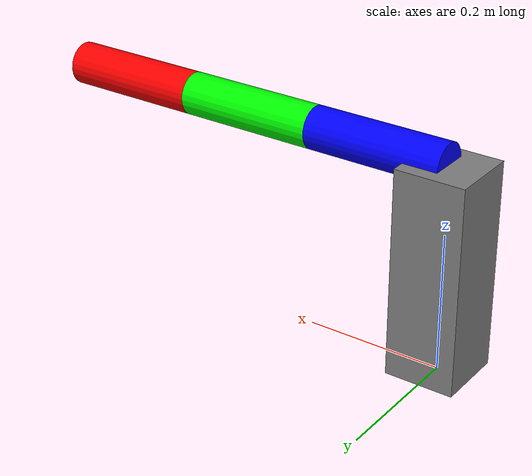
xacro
<?xml version="1.0"?>
<robot xmlns:xacro="http://wiki.ros.org/xacro">
  <!-- 1. 常量定义（方便后续修改尺寸） -->
  <xacro:property name="base_length" value="0.1" />    <!-- 底座尺寸 -->
  <xacro:property name="base_height" value="0.3" />    <!-- 底座尺寸 -->
  <xacro:property name="link_length" value="0.2" />    <!-- 关节连杆长度 -->
  <xacro:property name="link_radius" value="0.03" />   <!-- 关节连杆半径 -->
  <xacro:property name="gripper_length" value="0.1" /> <!-- 夹爪长度 -->
  <xacro:property name="gripper_radius" value="0.02" /><!-- 夹爪半径 -->
  <xacro:property name="joint_limit" value="${pi/2}" />   <!-- 关节角度限制（±90°） -->
  <xacro:property name="gripper_limit" value="0.6" />  <!-- 夹爪开合角度限制（0~0.6rad≈34°） -->

  <!-- 2. 机械结构定义（底座+3关节+夹爪，含视觉/碰撞/惯性） -->
  <link name="map">
    <origin xyz="0 0 0" rpy="0 0 0" />
  </link>

  <joint name="map_joint" type="fixed">
    <parent link="map" />
    <child link="base_link" />
    <origin xyz="0 0 0" rpy="0 0 0" />
  </joint>
  <!-- 2.1 底座连杆（base_link） -->
  <link name="base_link">
    <!-- 视觉模型（灰色立方体） -->
    <visual>
      <origin xyz="0 0 ${base_height/2}" rpy="0 0 0" />
      <geometry>
        <box size="${base_length} ${base_length} ${base_height}" />
      </geometry>
      <material name="gray">
        <color rgba="0.5 0.5 0.5 1" />
      </material>
    </visual>
    <!-- 碰撞模型（与视觉模型一致，用于碰撞检测） -->
    <collision>
      <geometry>
        <box size="${base_length} ${base_length} ${base_height}" />
      </geometry>
    </collision>
    <!-- 惯性模型（影响动力学仿真） -->
    <inertial>
      <mass value="1.0" />
      <inertia ixx="0.01" ixy="0.0" ixz="0.0" iyy="0.01" iyz="0.0" izz="0.01" />
    </inertial>
  </link>

  <!-- 2.2 关节1 + 连杆1 -->
  <joint name="joint1" type="revolute">
    <parent link="base_link" />
    <child link="link1" />
    <origin xyz="0 0 ${base_height}" rpy="0 0 0" /> <!-- 关节1安装在底座顶部中心 -->
    <axis xyz="0 0 1" /> <!-- 绕Z轴旋转（水平转动） -->
    <limit lower="-${pi}" upper="${pi}" effort="100" velocity="1.0" />
  </joint>
  <link name="link1">
    <visual>
      <origin xyz="${link_length/2} 0 0" rpy="0 ${pi/2} 0" /> <!-- 圆柱体沿X轴摆放 -->
      <geometry>
        <cylinder length="${link_length}" radius="${link_radius}" />
      </geometry>
      <material name="blue">
        <color rgba="0 0 1 1" />
      </material>
    </visual>
    <collision>
      <origin xyz="${link_length/2} 0 0" rpy="0 ${pi/2} 0" />
      <geometry>
        <cylinder length="${link_length}" radius="${link_radius}" />
      </geometry>
    </collision>
    <inertial>
      <mass value="0.5" />
      <inertia ixx="0.01" ixy="0.0" ixz="0.0" iyy="0.01" iyz="0.0" izz="0.01" />
    </inertial>
  </link>

  <!-- 2.3 关节2 + 连杆2 -->
  <joint name="joint2" type="revolute">
    <parent link="link1" />
    <child link="link2" />
    <origin xyz="${link_length} 0 0" rpy="0 0 0" /> <!-- 关节2安装在连杆1末端 -->
    <axis xyz="0 1 0" /> <!-- 绕Y轴旋转（上下摆动） -->
    <limit lower="-${joint_limit}" upper="${joint_limit}" effort="100" velocity="1.0" />
  </joint>
  <link name="link2">
    <visual>
      <origin xyz="${link_length/2} 0 0" rpy="0 ${pi/2} 0" />
      <geometry>
        <cylinder length="${link_length}" radius="${link_radius}" />
      </geometry>
      <material name="green">
        <color rgba="0 1 0 1" />
      </material>
    </visual>
    <collision>
      <origin xyz="${link_length/2} 0 0" rpy="0 ${pi/2} 0" />
      <geometry>
        <cylinder length="${link_length}" radius="${link_radius}" />
      </geometry>
    </collision>
    <inertial>
      <mass value="0.5" />
      <inertia ixx="0.01" ixy="0.0" ixz="0.0" iyy="0.01" iyz="0.0" izz="0.01" />
    </inertial>
  </link>

  <!-- 2.4 关节3 + 连杆3 -->
  <joint name="joint3" type="revolute">
    <parent link="link2" />
    <child link="link3" />
    <origin xyz="${link_length} 0 0" rpy="0 0 0" /> <!-- 关节3安装在连杆2末端 -->
    <axis xyz="0 1 0" /> <!-- 绕Y轴旋转（上下摆动，与关节2协同调整姿态） -->
    <limit lower="-${joint_limit}" upper="${joint_limit}" effort="100" velocity="1.0" />
  </joint>
  <link name="link3">
    <visual>
      <origin xyz="${link_length/2} 0 0" rpy="0 ${pi/2} 0" />
      <geometry>
        <cylinder length="${link_length}" radius="${link_radius}" />
      </geometry>
      <material name="red">
        <color rgba="1 0 0 1" />
      </material>
    </visual>
    <collision>
      <origin xyz="${link_length/2} 0 0" rpy="0 ${pi/2} 0" />
      <geometry>
        <cylinder length="${link_length}" radius="${link_radius}" />
      </geometry>
    </collision>
    <inertial>
      <mass value="0.3" />
      <inertia ixx="0.005" ixy="0.0" ixz="0.0" iyy="0.005" iyz="0.0" izz="0.005" />
    </inertial>
  </link>

  <!-- 2.5 夹爪关节 + 夹爪连杆（两指简化为单指，核心是控制接口） -->

  <!-- 在你的URDF机械结构定义部分添加 -->

</robot>
